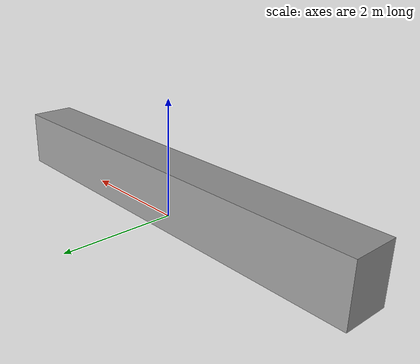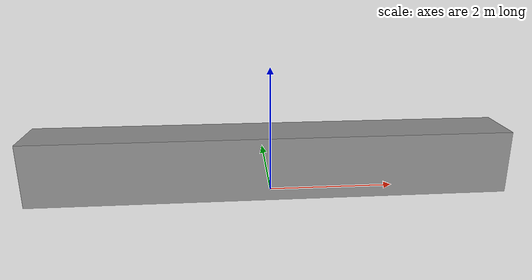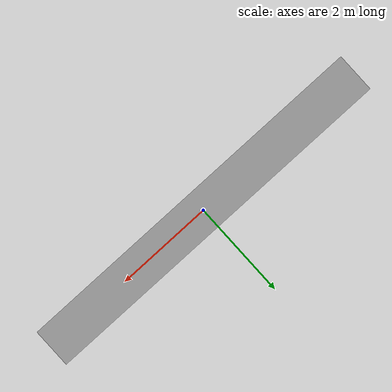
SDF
<?xml version="1.0" ?>
<sdf version="1.5">
  <model name="grey_wall">
    <static>true</static>
    <link name="link">
      <pose>0 0 0.5 0 0 0</pose>
      <collision name="collision">
        <geometry>
          <box>
            <size>7 0.8 1</size>
          </box>
        </geometry>
      </collision>
      <visual name="visual">
        <cast_shadows>false</cast_shadows>
        <geometry>
          <box>
            <size>7.5 0.8 1</size>
          </box>
        </geometry>
        <material>
          <script>
            <uri>model://w2/materials/scripts</uri>
            <uri>model://w2/materials/textures</uri>
            <name>vrc/grey_wall</name>
          </script>
        </material>
      </visual>
    </link>
  </model>
</sdf>
